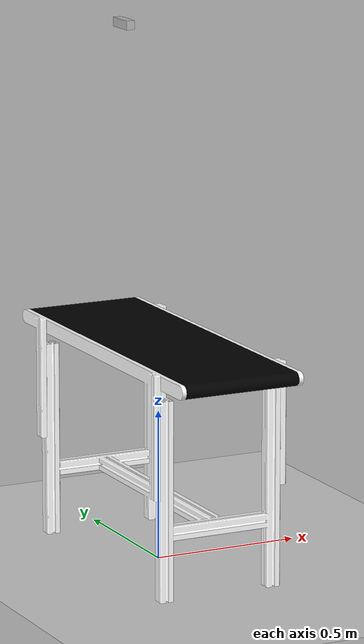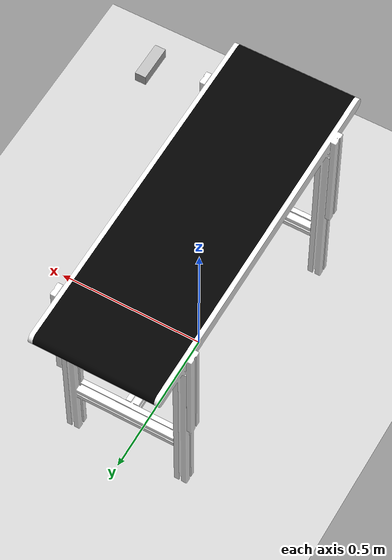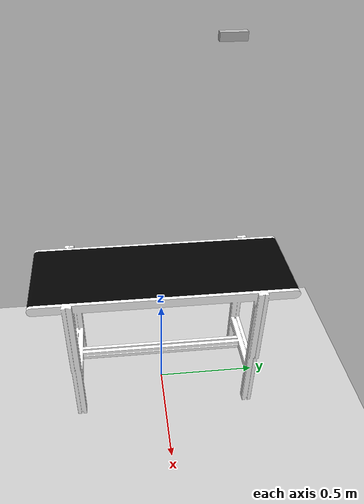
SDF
<?xml version="1.0" ?>

<sdf version="1.4">

  <world name="default">

    <!-- WORLD COMPONENTS: STANDARD -->

    <gravity>0 0 -9.8</gravity>

    <include>
      <uri>model://ground_plane</uri>
    </include>

    <include>
      <uri>model://sun</uri>
    </include>

    <scene>
      <shadows>0</shadows>
    </scene>

    <!-- Insert Conveyor Belt -->
    <include>
      <name>conveyor_belt</name>
      <pose>0 0 0 0 0 0</pose>
      <uri>model://conveyor_belt</uri>
    </include>

  </world>

</sdf>

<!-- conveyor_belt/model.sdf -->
<sdf version="1.4">

    <model name="conveyor_belt">

        <model name="conveyorbelt_fixed">

            <static>true</static>

            <link name="belt_visual">
                <visual name="visual">
                    <geometry>
                        <mesh>
                            <scale>1 1 1</scale>
                            <uri>model://conveyor_belt/meshes/conveyor_belt.dae</uri>
                        </mesh>
                    </geometry>
                </visual>
                <collision name="collision">
                    <origin xyz="0.0 0.0 0" rpy="0.0 0.0 0.0"/>
                    <geometry>
                        <mesh>
                            <scale>1 1 1</scale>
                            <uri>model://conveyor_belt/meshes/conveyor_belt.dae</uri>
                        </mesh>
                    </geometry>
                </collision>
            </link>

        </model>

        <model name="conveyorbelt_moving">

            <allow_auto_disable>0</allow_auto_disable>
            <static>false</static>

            <pose>0 0 0.741 0 0 0.0</pose>

            <link name="belt_moving">
                <inertial>
                    <mass>100.0</mass>
                    <inertia>
                        <ixx>0.0</ixx>
                        <ixy>0.0</ixy>
                        <ixz>0.0</ixz>
                        <iyy>0.0</iyy>
                        <iyz>0.0</iyz>
                        <izz>0.0</izz>
                    </inertia>
                </inertial>
                <collision name="belt_collision">
                    <geometry>
                        <box>
                            <size>0.425 1.2 0.00001</size>
                        </box>
                    </geometry>
                    <surface>
                        <friction>
                            <ode>
                                <mu>100.0</mu>
                                <mu2>100.0</mu2>
                            </ode>
                            <torsional>
                                <coefficient>1000.0</coefficient>
                                <patch_radius>0.1</patch_radius>
                            </torsional>
                        </friction>
                    </surface>
                </collision>
            </link>

        </model>

        <joint name="belt_joint" type="prismatic">
            <parent>conveyorbelt_fixed::belt_visual</parent>
            <child>conveyorbelt_moving::belt_moving</child>
            <axis>
                <xyz>0 1 0</xyz>
                <limit>
                    <lower>0.0</lower>
                    <upper>0.01</upper>
                </limit>
            </axis>
        </joint>

        <plugin name="ros2_conveyorbelt_plugin" filename="libros2_conveyorbelt_plugin.so" >
            <ros>
                <namespace></namespace>
            </ros>
            <max_velocity>1.0</max_velocity>
            <publish_rate>1000</publish_rate>
        </plugin>

        <!-- Add the Depth Camera -->
        <link name="camera_link">
            <pose>0 0.25 1.741 0 1.5708 0</pose> <!-- 1.741 = belt height (0.741) + 1 meter -->
            <visual name="visual">
                <geometry>
                    <box>
                        <size>0.03 0.1 0.03</size>
                    </box>
                </geometry>
            </visual>
            <collision name="collision">
                <geometry>
                    <box>
                        <size>0.03 0.1 0.03</size>
                    </box>
                </geometry>
            </collision>
            <sensor name="realsense_d435" type="depth">
                <always_on>true</always_on>
                <update_rate>30</update_rate>
                <camera>
                    <horizontal_fov>1.0472</horizontal_fov>  <!-- 60 degrees -->
                    <image>
                        <width>848</width>
                        <height>480</height>
                        <format>R8G8B8</format>
                    </image>
                    <clip>
                        <near>0.1</near>
                        <far>10</far>
                    </clip>
                    <depth_camera>
                        <output>depths</output>
                    </depth_camera>
                </camera>
                <plugin name="camera_controller" filename="libgazebo_ros_camera.so">
                    <ros>
                        <namespace></namespace>
                        <remapping>image_raw:=color/image_raw</remapping>
                        <remapping>camera_info:=color/camera_info</remapping>
                        <remapping>depth_image_raw:=depth/image_raw</remapping>
                        <remapping>depth_camera_info:=depth/camera_info</remapping>
                        <remapping>points:=depth/points</remapping>
                    </ros>
                    <camera_name>realsense</camera_name>
                    <frame_name>camera_link</frame_name>
                    <hack_baseline>0.07</hack_baseline>
                    <min_depth>0.1</min_depth>
                    <max_depth>10.0</max_depth>
                </plugin>
            </sensor>
        </link>

        <!-- Fixed joint to attach camera to conveyor -->
        <joint name="camera_joint" type="fixed">
            <parent>conveyorbelt_fixed::belt_visual</parent>
            <child>camera_link</child>
        </joint>

    </model>

</sdf>
